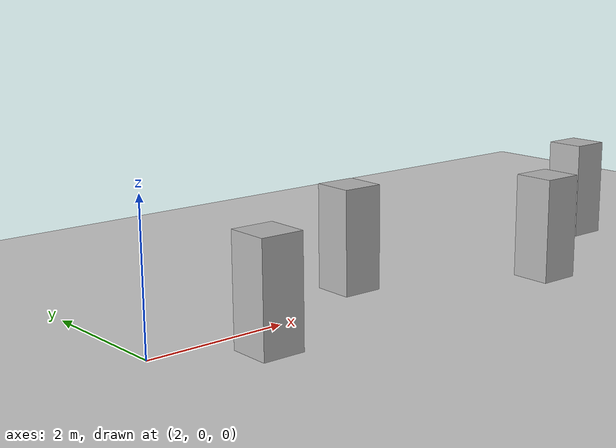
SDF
<?xml version="1.0"?>
<sdf version="1.6">
  <world name="v2-04g-static-s4907">
    <gravity>0 0 -9.81</gravity>
    <physics name="v2_deterministic" type="ode">
      <max_step_size>0.002</max_step_size>
      <real_time_update_rate>500</real_time_update_rate>
    </physics>
    <include>
      <uri>model://sun</uri>
    </include>
    <include>
      <uri>model://ground_plane</uri>
    </include>
    <model name="pillar-1">
      <static>true</static>
      <pose>3.278363257 -0.694774718 0.750000000 0 0 -0.013778403</pose>
      <link name="link">
        <collision name="collision">
          <geometry>
            <box>
              <size>0.600000 0.600000 1.500000</size>
            </box>
          </geometry>
        </collision>
        <visual name="visual">
          <geometry>
            <box>
              <size>0.600000 0.600000 1.500000</size>
            </box>
          </geometry>
        </visual>
      </link>
    </model>
    <model name="pillar-2">
      <static>true</static>
      <pose>5.722512151 0.625486048 0.750000000 0 0 -0.024009481</pose>
      <link name="link">
        <collision name="collision">
          <geometry>
            <box>
              <size>0.600000 0.600000 1.500000</size>
            </box>
          </geometry>
        </collision>
        <visual name="visual">
          <geometry>
            <box>
              <size>0.600000 0.600000 1.500000</size>
            </box>
          </geometry>
        </visual>
      </link>
    </model>
    <model name="pillar-3">
      <static>true</static>
      <pose>8.277228089 -0.769086659 0.750000000 0 0 -0.018928507</pose>
      <link name="link">
        <collision name="collision">
          <geometry>
            <box>
              <size>0.600000 0.600000 1.500000</size>
            </box>
          </geometry>
        </collision>
        <visual name="visual">
          <geometry>
            <box>
              <size>0.600000 0.600000 1.500000</size>
            </box>
          </geometry>
        </visual>
      </link>
    </model>
    <model name="pillar-4">
      <static>true</static>
      <pose>10.779479153 0.676922228 0.750000000 0 0 -0.004905813</pose>
      <link name="link">
        <collision name="collision">
          <geometry>
            <box>
              <size>0.600000 0.600000 1.500000</size>
            </box>
          </geometry>
        </collision>
        <visual name="visual">
          <geometry>
            <box>
              <size>0.600000 0.600000 1.500000</size>
            </box>
          </geometry>
        </visual>
      </link>
    </model>
  </world>
</sdf>
